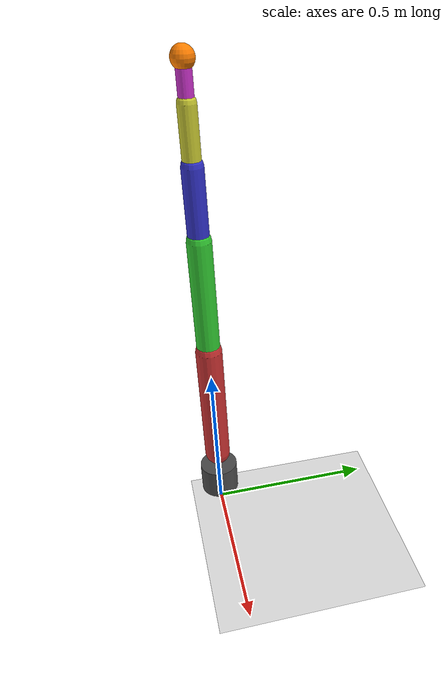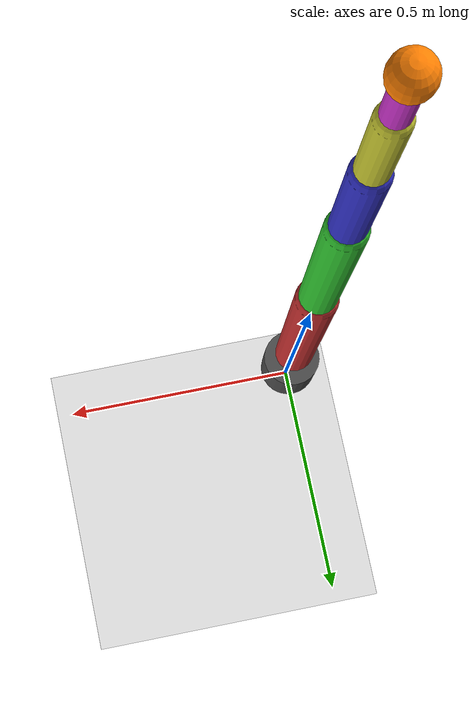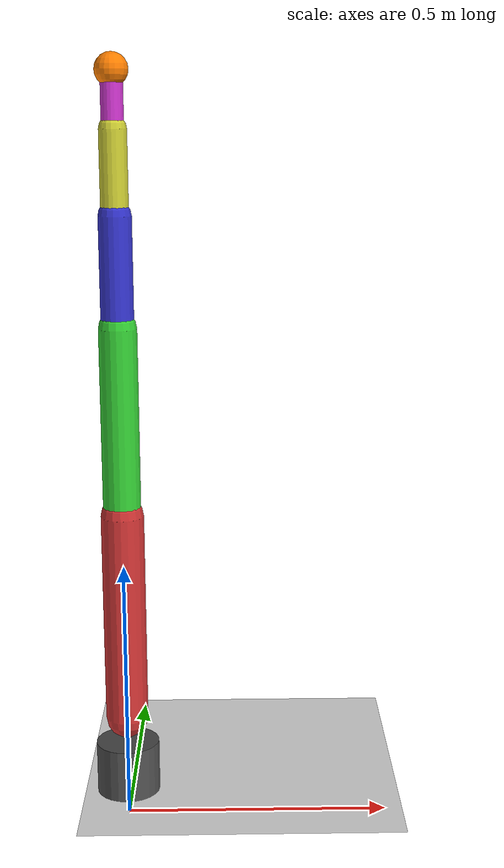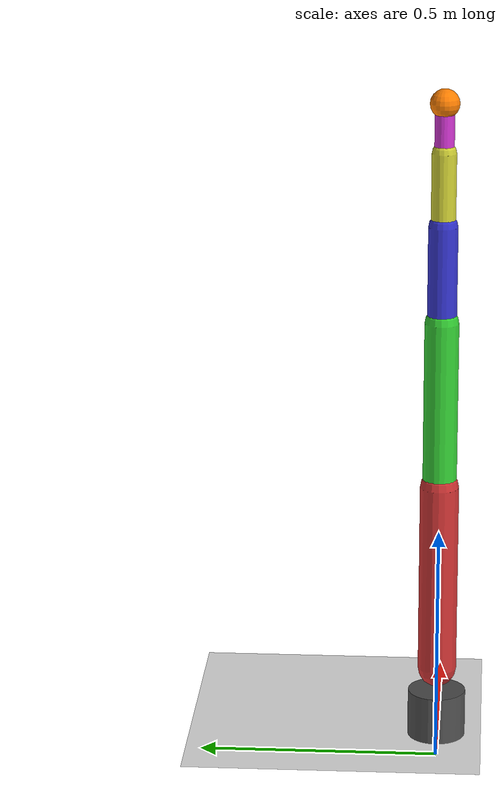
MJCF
<mujoco model="6dof_arm">
  <option gravity="0 0 -9.81" timestep="0.002">
    <flag contact="enable"/>
  </option>

  <default>
    <joint damping="0.5" armature="0.1"/>
    <geom contype="1" conaffinity="1" condim="3" rgba="0.8 0.6 0.2 1" margin="0.001"/>
  </default>

  <worldbody>
    <light diffuse=".5 .5 .5" pos="0 0 3" dir="0 0 -1"/>
    <geom type="plane" size="2 2 0.01" rgba="0.9 0.9 0.9 1" contype="1" conaffinity="1"/>

    <body name="link0" pos="0 0 0.1">
      <geom type="cylinder" size="0.06 0.05" rgba="0.3 0.3 0.3 1"/>
      <joint name="joint0" type="hinge" axis="0 0 1" range="-3.14 3.14"/>

      <body name="link1" pos="0 0 0.1">
        <geom type="capsule" size="0.04" fromto="0 0 0 0 0 0.4" rgba="0.8 0.2 0.2 1"/>
        <joint name="joint1" type="hinge" axis="0 1 0" range="-2.0 2.0"/>

        <body name="link2" pos="0 0 0.4">
          <geom type="capsule" size="0.035" fromto="0 0 0 0 0 0.35" rgba="0.2 0.8 0.2 1"/>
          <joint name="joint2" type="hinge" axis="0 1 0" range="-2.5 2.5"/>

          <body name="link3" pos="0 0 0.35">
            <geom type="capsule" size="0.03" fromto="0 0 0 0 0 0.2" rgba="0.2 0.2 0.8 1"/>
            <joint name="joint3" type="hinge" axis="0 0 1" range="-3.14 3.14"/>

            <body name="link4" pos="0 0 0.2">
              <geom type="capsule" size="0.025" fromto="0 0 0 0 0 0.15" rgba="0.8 0.8 0.2 1"/>
              <joint name="joint4" type="hinge" axis="0 1 0" range="-2.0 2.0"/>

              <body name="link5" pos="0 0 0.15">
                <geom type="capsule" size="0.02" fromto="0 0 0 0 0 0.1" rgba="0.8 0.2 0.8 1"/>
                <joint name="joint5" type="hinge" axis="0 0 1" range="-3.14 3.14"/>

                <body name="ee" pos="0 0 0.1">
                  <site name="ee_site" pos="0 0 0" size="0.02" rgba="1 0 0 1"/>
                  <geom type="sphere" size="0.03" rgba="1 0.5 0 1"/>
                </body>
              </body>
            </body>
          </body>
        </body>
      </body>
    </body>
  </worldbody>

  <actuator>
    <motor name="motor0" joint="joint0" ctrlrange="-100 100" ctrllimited="true"/>
    <motor name="motor1" joint="joint1" ctrlrange="-100 100" ctrllimited="true"/>
    <motor name="motor2" joint="joint2" ctrlrange="-100 100" ctrllimited="true"/>
    <motor name="motor3" joint="joint3" ctrlrange="-50 50" ctrllimited="true"/>
    <motor name="motor4" joint="joint4" ctrlrange="-50 50" ctrllimited="true"/>
    <motor name="motor5" joint="joint5" ctrlrange="-50 50" ctrllimited="true"/>
  </actuator>

  <sensor>
    <framepos name="ee_pos" objtype="site" objname="ee_site"/>
  </sensor>
</mujoco>
